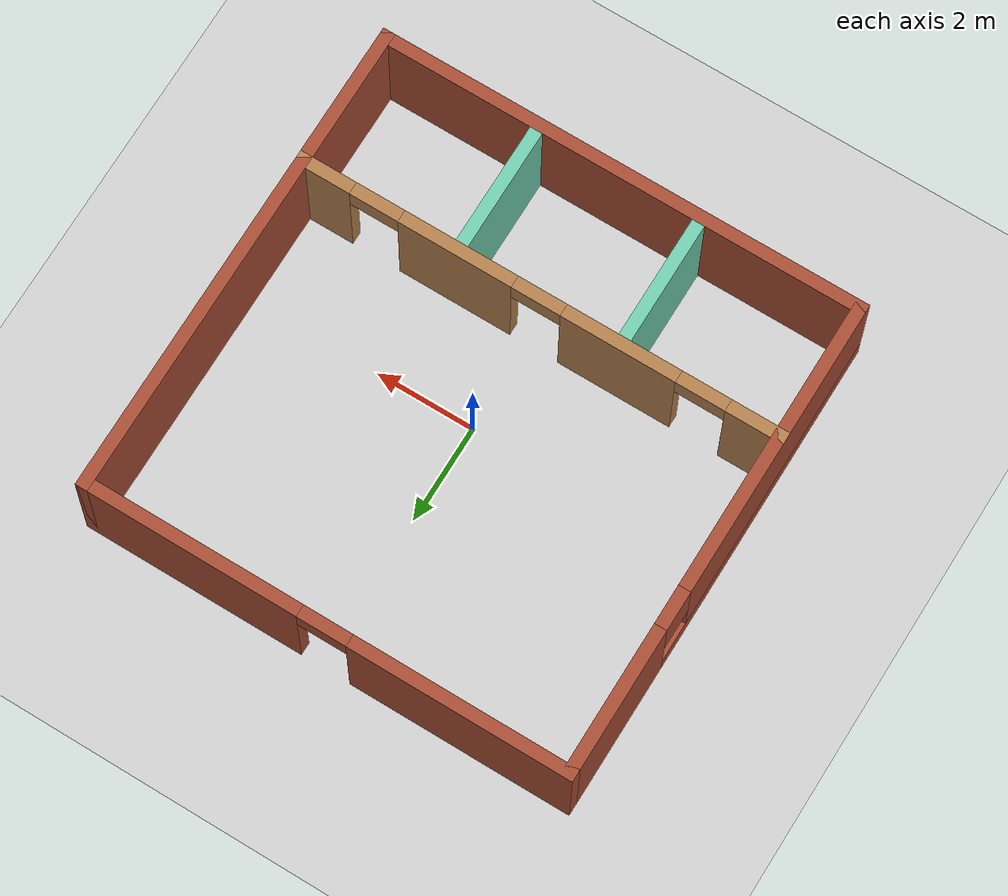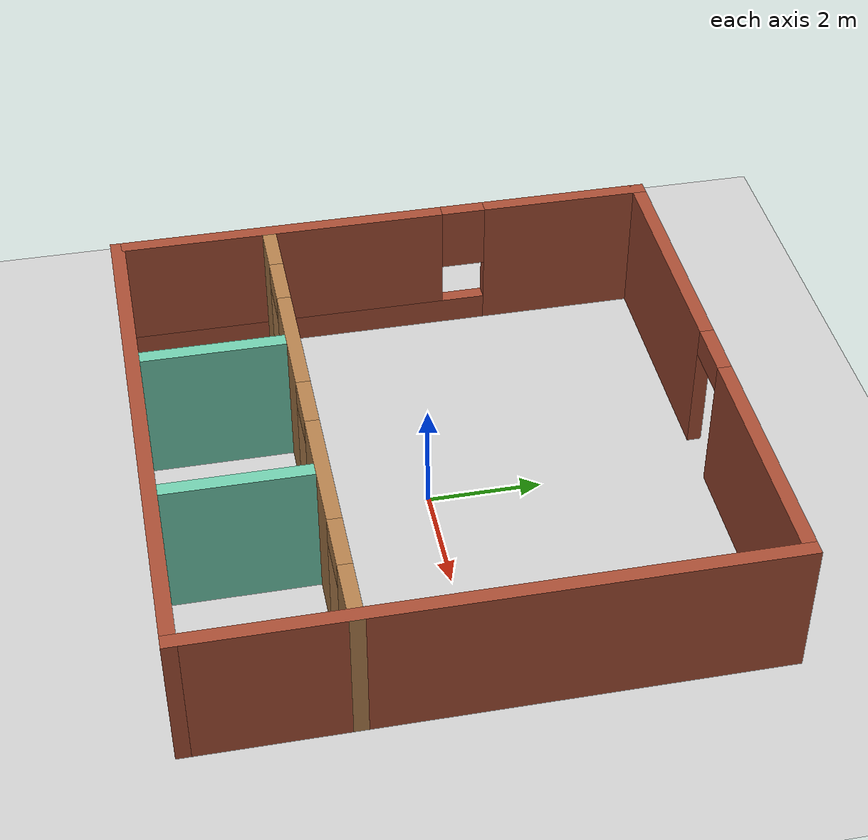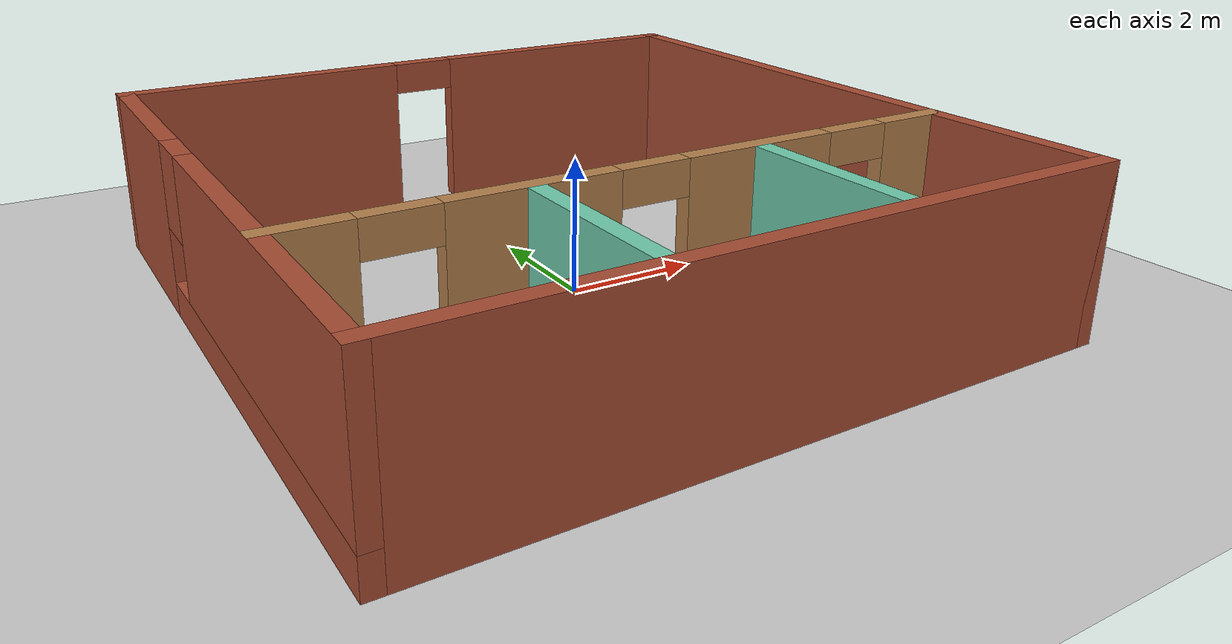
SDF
<sdf version="1.6">
 <world name="default">
  <model name="ground_plane">
   <static>1</static>
   <link name="link">
    <collision name="collision">
     <geometry><plane><normal>0 0 1</normal><size>100 100</size></plane></geometry>
     <surface>
      <contact><collide_bitmask>65535</collide_bitmask></contact>
      <friction><ode><mu>100</mu><mu2>50</mu2></ode></friction>
     </surface>
    </collision>
    <visual name="visual">
     <cast_shadows>0</cast_shadows>
     <geometry><plane><normal>0 0 1</normal><size>100 100</size></plane></geometry>
     <material>
      <script><uri>file://media/materials/scripts/gazebo.material</uri><name>Gazebo/Grey</name></script>
     </material>
    </visual>
   </link>
  </model>
  <model name="small_office_v2">
   <pose>-0.125 0.125 0 0 -0 0</pose>
   <link name="Wall_0">
    <pose>-4.875 0 0 0 0 -1.5708</pose>
    <visual name="Wall_0_Visual_0">
     <pose>-3.44974 0 1.25 0 -0 0</pose>
     <geometry><box><size>3.10051 0.25 2.5</size></box></geometry>
     <material>
      <script><uri>file://media/materials/scripts/gazebo.material</uri><name>Gazebo/Bricks</name></script>
      <ambient>1 1 1 1</ambient>
     </material>
     <meta><layer>0</layer></meta>
    </visual>
    <collision name="Wall_0_Collision_0">
     <geometry><box><size>3.10051 0.25 2.5</size></box></geometry>
     <pose>-3.44974 0 1.25 0 -0 0</pose>
    </collision>
    <visual name="Wall_0_Visual_1">
     <pose>1.55026 0 0.25 0 -0 0</pose>
     <geometry><box><size>6.89949 0.25 0.5</size></box></geometry>
     <material>
      <script><uri>file://media/materials/scripts/gazebo.material</uri><name>Gazebo/Bricks</name></script>
      <ambient>1 1 1 1</ambient>
     </material>
     <meta><layer>0</layer></meta>
    </visual>
    <collision name="Wall_0_Collision_1">
     <geometry><box><size>6.89949 0.25 0.5</size></box></geometry>
     <pose>1.55026 0 0.25 0 -0 0</pose>
    </collision>
    <visual name="Wall_0_Visual_2">
     <pose>1.95026 0 1.5 0 -0 0</pose>
     <geometry><box><size>6.09949 0.25 2</size></box></geometry>
     <material>
      <script><uri>file://media/materials/scripts/gazebo.material</uri><name>Gazebo/Bricks</name></script>
      <ambient>1 1 1 1</ambient>
     </material>
     <meta><layer>0</layer></meta>
    </visual>
    <collision name="Wall_0_Collision_2">
     <geometry><box><size>6.09949 0.25 2</size></box></geometry>
     <pose>1.95026 0 1.5 0 -0 0</pose>
    </collision>
    <visual name="Wall_0_Visual_3">
     <pose>-1.49949 0 1.9 0 -0 0</pose>
     <geometry><box><size>0.8 0.25 1.2</size></box></geometry>
     <material>
      <script><uri>file://media/materials/scripts/gazebo.material</uri><name>Gazebo/Bricks</name></script>
      <ambient>1 1 1 1</ambient>
     </material>
     <meta><layer>0</layer></meta>
    </visual>
    <collision name="Wall_0_Collision_3">
     <geometry><box><size>0.8 0.25 1.2</size></box></geometry>
     <pose>-1.49949 0 1.9 0 -0 0</pose>
    </collision>
   </link>
   <link name="Wall_11">
    <collision name="Wall_11_Collision">
     <geometry><box><size>2.5 0.25 2.5</size></box></geometry>
     <pose>0 0 1.25 0 -0 0</pose>
    </collision>
    <visual name="Wall_11_Visual">
     <pose>0 0 1.25 0 -0 0</pose>
     <geometry><box><size>2.5 0.25 2.5</size></box></geometry>
     <material>
      <script><uri>file://media/materials/scripts/gazebo.material</uri><name>Gazebo/Grey</name></script>
      <ambient>0.435294 0.796078 0.67451 1</ambient>
     </material>
     <meta><layer>0</layer></meta>
    </visual>
    <pose>-1.67 -3.5 0 0 0 -1.5708</pose>
   </link>
   <link name="Wall_13">
    <collision name="Wall_13_Collision">
     <geometry><box><size>2.5 0.25 2.5</size></box></geometry>
     <pose>0 0 1.25 0 -0 0</pose>
    </collision>
    <visual name="Wall_13_Visual">
     <pose>0 0 1.25 0 -0 0</pose>
     <geometry><box><size>2.5 0.25 2.5</size></box></geometry>
     <material>
      <script><uri>file://media/materials/scripts/gazebo.material</uri><name>Gazebo/Grey</name></script>
      <ambient>0.435294 0.796078 0.67451 1</ambient>
     </material>
     <meta><layer>0</layer></meta>
    </visual>
    <pose>1.66 -3.5 0 0 0 -1.5708</pose>
   </link>
   <link name="Wall_2">
    <pose>0 4.875 0 0 -0 0</pose>
    <visual name="Wall_2_Visual_0">
     <pose>-2.75 0 1.25 0 -0 0</pose>
     <geometry><box><size>4.5 0.25 2.5</size></box></geometry>
     <material>
      <script><uri>file://media/materials/scripts/gazebo.material</uri><name>Gazebo/Bricks</name></script>
      <ambient>1 1 1 1</ambient>
     </material>
     <meta><layer>0</layer></meta>
    </visual>
    <collision name="Wall_2_Collision_0">
     <geometry><box><size>4.5 0.25 2.5</size></box></geometry>
     <pose>-2.75 0 1.25 0 -0 0</pose>
    </collision>
    <visual name="Wall_2_Visual_1">
     <pose>2.75 0 1.25 0 -0 0</pose>
     <geometry><box><size>4.5 0.25 2.5</size></box></geometry>
     <material>
      <script><uri>file://media/materials/scripts/gazebo.material</uri><name>Gazebo/Bricks</name></script>
      <ambient>1 1 1 1</ambient>
     </material>
     <meta><layer>0</layer></meta>
    </visual>
    <collision name="Wall_2_Collision_1">
     <geometry><box><size>4.5 0.25 2.5</size></box></geometry>
     <pose>2.75 0 1.25 0 -0 0</pose>
    </collision>
    <visual name="Wall_2_Visual_2">
     <pose>0 0 2.25 0 -0 0</pose>
     <geometry><box><size>1 0.25 0.5</size></box></geometry>
     <material>
      <script><uri>file://media/materials/scripts/gazebo.material</uri><name>Gazebo/Bricks</name></script>
      <ambient>1 1 1 1</ambient>
     </material>
     <meta><layer>0</layer></meta>
    </visual>
    <collision name="Wall_2_Collision_2">
     <geometry><box><size>1 0.25 0.5</size></box></geometry>
     <pose>0 0 2.25 0 -0 0</pose>
    </collision>
   </link>
   <link name="Wall_5">
    <collision name="Wall_5_Collision">
     <geometry><box><size>10 0.25 2.5</size></box></geometry>
     <pose>0 0 1.25 0 -0 0</pose>
    </collision>
    <visual name="Wall_5_Visual">
     <pose>0 0 1.25 0 -0 0</pose>
     <geometry><box><size>10 0.25 2.5</size></box></geometry>
     <material>
      <script><uri>file://media/materials/scripts/gazebo.material</uri><name>Gazebo/Bricks</name></script>
      <ambient>1 1 1 1</ambient>
     </material>
     <meta><layer>0</layer></meta>
    </visual>
    <pose>4.875 0 0 0 0 -1.5708</pose>
   </link>
   <link name="Wall_7">
    <collision name="Wall_7_Collision">
     <geometry><box><size>10 0.25 2.5</size></box></geometry>
     <pose>0 0 1.25 0 -0 0</pose>
    </collision>
    <visual name="Wall_7_Visual">
     <pose>0 0 1.25 0 -0 0</pose>
     <geometry><box><size>10 0.25 2.5</size></box></geometry>
     <material>
      <script><uri>file://media/materials/scripts/gazebo.material</uri><name>Gazebo/Bricks</name></script>
      <ambient>1 1 1 1</ambient>
     </material>
     <meta><layer>0</layer></meta>
    </visual>
    <pose>0 -4.875 0 0 -0 0</pose>
   </link>
   <link name="Wall_9">
    <pose>0 -2.125 0 0 -0 0</pose>
    <visual name="Wall_9_Visual_0">
     <pose>-4.4165 0 1.25 0 -0 0</pose>
     <geometry><box><size>1.167 0.25 2.5</size></box></geometry>
     <material>
      <script><uri>file://media/materials/scripts/gazebo.material</uri><name>Gazebo/Wood</name></script>
      <ambient>1 1 1 1</ambient>
     </material>
     <meta><layer>0</layer></meta>
    </visual>
    <collision name="Wall_9_Collision_0">
     <geometry><box><size>1.167 0.25 2.5</size></box></geometry>
     <pose>-4.4165 0 1.25 0 -0 0</pose>
    </collision>
    <visual name="Wall_9_Visual_1">
     <pose>-1.6665 0 1.25 0 -0 0</pose>
     <geometry><box><size>2.333 0.25 2.5</size></box></geometry>
     <material>
      <script><uri>file://media/materials/scripts/gazebo.material</uri><name>Gazebo/Wood</name></script>
      <ambient>1 1 1 1</ambient>
     </material>
     <meta><layer>0</layer></meta>
    </visual>
    <collision name="Wall_9_Collision_1">
     <geometry><box><size>2.333 0.25 2.5</size></box></geometry>
     <pose>-1.6665 0 1.25 0 -0 0</pose>
    </collision>
    <visual name="Wall_9_Visual_2">
     <pose>1.6674 0 1.25 0 -0 0</pose>
     <geometry><box><size>2.3348 0.25 2.5</size></box></geometry>
     <material>
      <script><uri>file://media/materials/scripts/gazebo.material</uri><name>Gazebo/Wood</name></script>
      <ambient>1 1 1 1</ambient>
     </material>
     <meta><layer>0</layer></meta>
    </visual>
    <collision name="Wall_9_Collision_2">
     <geometry><box><size>2.3348 0.25 2.5</size></box></geometry>
     <pose>1.6674 0 1.25 0 -0 0</pose>
    </collision>
    <visual name="Wall_9_Visual_3">
     <pose>4.4174 0 1.25 0 -0 0</pose>
     <geometry><box><size>1.1652 0.25 2.5</size></box></geometry>
     <material>
      <script><uri>file://media/materials/scripts/gazebo.material</uri><name>Gazebo/Wood</name></script>
      <ambient>1 1 1 1</ambient>
     </material>
     <meta><layer>0</layer></meta>
    </visual>
    <collision name="Wall_9_Collision_3">
     <geometry><box><size>1.1652 0.25 2.5</size></box></geometry>
     <pose>4.4174 0 1.25 0 -0 0</pose>
    </collision>
    <visual name="Wall_9_Visual_4">
     <pose>-3.333 0 2.25 0 -0 0</pose>
     <geometry><box><size>1 0.25 0.5</size></box></geometry>
     <material>
      <script><uri>file://media/materials/scripts/gazebo.material</uri><name>Gazebo/Wood</name></script>
      <ambient>1 1 1 1</ambient>
     </material>
     <meta><layer>0</layer></meta>
    </visual>
    <collision name="Wall_9_Collision_4">
     <geometry><box><size>1 0.25 0.5</size></box></geometry>
     <pose>-3.333 0 2.25 0 -0 0</pose>
    </collision>
    <visual name="Wall_9_Visual_5">
     <pose>0 0 2.25 0 -0 0</pose>
     <geometry><box><size>1 0.25 0.5</size></box></geometry>
     <material>
      <script><uri>file://media/materials/scripts/gazebo.material</uri><name>Gazebo/Wood</name></script>
      <ambient>1 1 1 1</ambient>
     </material>
     <meta><layer>0</layer></meta>
    </visual>
    <collision name="Wall_9_Collision_5">
     <geometry><box><size>1 0.25 0.5</size></box></geometry>
     <pose>0 0 2.25 0 -0 0</pose>
    </collision>
    <visual name="Wall_9_Visual_6">
     <pose>3.3348 0 2.25 0 -0 0</pose>
     <geometry><box><size>1 0.25 0.5</size></box></geometry>
     <material>
      <script><uri>file://media/materials/scripts/gazebo.material</uri><name>Gazebo/Wood</name></script>
      <ambient>1 1 1 1</ambient>
     </material>
     <meta><layer>0</layer></meta>
    </visual>
    <collision name="Wall_9_Collision_6">
     <geometry><box><size>1 0.25 0.5</size></box></geometry>
     <pose>3.3348 0 2.25 0 -0 0</pose>
    </collision>
   </link>
   <static>1</static>
  </model>
 </world>
</sdf>
